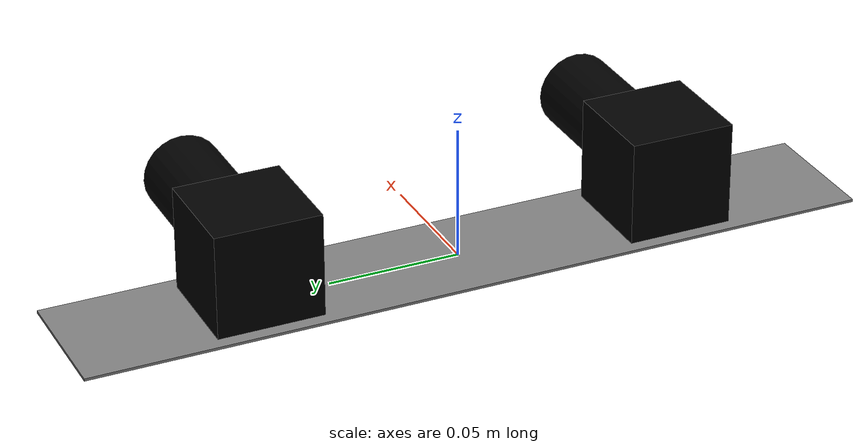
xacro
<?xml version="1.0"?>

<!-- Note that ORDER MATTERS for xmlns! -->
<robot name="stingray"
    xmlns:xi="http://www.w3.org/2001/XInclude"
    xmlns:gazebo="http://playerstage.sourceforge.net/gazebo/xmlschema/#gz"
    xmlns:model="http://playerstage.sourceforge.net/gazebo/xmlschema/#model"
    xmlns:sensor="http://playerstage.sourceforge.net/gazebo/xmlschema/#sensor"
    xmlns:body="http://playerstage.sourceforge.net/gazebo/xmlschema/#body"
    xmlns:geom="http://playerstage.sourceforge.net/gazebo/xmlschema/#geom"
    xmlns:joint="http://playerstage.sourceforge.net/gazebo/xmlschema/#joint"
    xmlns:interface="http://playerstage.sourceforge.net/gazebo/xmlschema/#interface"
    xmlns:rendering="http://playerstage.sourceforge.net/gazebo/xmlschema/#rendering"
    xmlns:renderable="http://playerstage.sourceforge.net/gazebo/xmlschema/#renderable"
    xmlns:controller="http://playerstage.sourceforge.net/gazebo/xmlschema/#controller"
    xmlns:physics="http://playerstage.sourceforge.net/gazebo/xmlschema/#physics"
    xmlns:xacro="http://www.ros.org/wiki/xacro"
>

    <xacro:property name="M_PI"        value="3.1415926535897931"/>
    <xacro:property name="chassis_x"   value="0.05"/>
    <xacro:property name="chassis_y"   value="0.3"/>
    <xacro:property name="chassis_z"   value="0.001"/>
    <xacro:property name="camera_size" value="0.04"/>
    <xacro:property name="lens_length" value="0.05"/>
    <xacro:property name="lens_radius" value="0.015"/>

    <xacro:macro name="default_inertial" params="mass">
        <inertial>
            <mass value="${mass}" />
            <inertia ixx="${mass*0.1}" ixy="0.0" ixz="0.0" iyy="${mass*0.1}" iyz="0.0" izz="${mass*0.1}"/>
        </inertial>
    </xacro:macro>

    <!-- Dummy base_link. Only here to set origin, so make it small. -->
    <link name="base_link">
        <xacro:default_inertial mass="1.0"/>

        <visual>
            <origin xyz="0.0 0.0 0.0" rpy="0.0 0.0 0.0"/>
            <geometry>
                <sphere radius="0.00001"/>
            </geometry>
            <material name="gray">
                <color rgba=".2 .2 .2 1"/>
            </material>
        </visual>
    </link>

    <!-- Camera mounting plate. -->
    <link name="chassis">
        <xacro:default_inertial mass="45.0"/>

        <visual>
            <origin xyz="0.0 0.0 0.0" rpy="0.0 0.0 0.0"/>
            <geometry>
                <box size="${chassis_x} ${chassis_y} ${chassis_z}"/>
            </geometry>
            <material name="grey">
                <color rgba="0.5 0.5 0.5 1"/>
            </material>
        </visual>
    </link>

    <!-- Connect base_link and chassis. -->
    <joint name="base_link_to_chassis" type="fixed">
        <origin xyz="0.0 0.0 0.0" rpy="0.0 0.0 0.0"/>
        <parent link="base_link"/>
        <child link="chassis"/>
    </joint>

   <!-- The left camera in stereo pair. -->
    <link name="left_camera">
        <xacro:default_inertial mass="3.0"/>

        <visual>
            <origin xyz="0.0 0.0 0.0" rpy="0.0 0.0 0.0"/>
            <geometry>
                <box size="${camera_size} ${camera_size} ${camera_size}"/>
            </geometry>
            <material name="black">
                <color rgba="0.0 0.0 0.0 1"/>
            </material>
        </visual>
    </link>

    <!-- Connect chassis and left camera. -->
    <joint name="chassis_to_left_camera" type="fixed">
        <origin xyz="0 ${camera_size*2} ${camera_size*0.5}" rpy="0.0 0.0 0.0"/>
        <parent link="chassis"/>
        <child link="left_camera"/>
    </joint>

   <!-- The right camera in stereo pair. -->

   <link name="right_camera">
        <xacro:default_inertial mass="3.0"/>

        <visual>
            <origin xyz="0.0 0.0 0.0" rpy="0.0 0.0 0.0"/>
            <geometry>
                <box size="${camera_size} ${camera_size} ${camera_size}"/>
            </geometry>
            <material name="black"/>
        </visual>
    </link>

    <!-- Connect chassis and right camera. -->

    <joint name="chassis_to_right_camera" type="fixed">
        <origin xyz="0 ${-camera_size*2} ${camera_size*0.5}" rpy="0.0 0.0 0.0"/>
        <parent link="chassis"/>
        <child link="right_camera"/>
    </joint>

    <!-- The left camera lens. -->
    <link name="left_camera_lens">
        <xacro:default_inertial mass="3.0"/>

        <visual>
            <origin xyz="0.0 0.0 0.0" rpy="0.0 0.0 0.0"/>
            <geometry>
                <cylinder length="${lens_length}" radius="${lens_radius}"/>
            </geometry>
            <material name="black"/>
        </visual>
    </link>

    <!-- Connect left camera and left camera lens. -->
    <joint name="left_camera_to_left_camera_lens" type="fixed">
        <origin xyz="${camera_size} 0.0 0.0" rpy="0.0 ${M_PI/2} 0.0"/>
        <parent link="left_camera"/>
        <child link="left_camera_lens"/>
    </joint>

    <!-- The right camera lens. -->

   <link name="right_camera_lens">
        <xacro:default_inertial mass="3.0"/>

        <visual>
            <origin xyz="0.0 0.0 0.0" rpy="0.0 0.0 0.0"/>
            <geometry>
                <cylinder length="${lens_length}" radius="${lens_radius}"/>
            </geometry>
            <material name="black"/>
        </visual>
    </link>

    <!-- Connect right camera and right camera lens. -->
   <joint name="right_camera_to_right_camera_lens" type="fixed">
        <origin xyz="${camera_size} 0.0 0.0" rpy="0.0 ${M_PI/2} 0.0"/>
        <parent link="right_camera"/>
        <child link="right_camera_lens"/>
    </joint>

    <!-- The left camera optical frame. -->
    <link name="camera_optical_frame">
        <xacro:default_inertial mass=".01"/>

        <visual>
            <origin xyz="0.0 0.0 0.0" rpy="0.0 0.0 0.0"/>
            <geometry>
                <sphere radius=".0001"/>
            </geometry>
            <material name="grey"/>
        </visual>
    </link>

    <!-- Connect left camera lens and camera optical frame. -->

    <joint name="left_camera_lens_to_camera_optical_frame" type="fixed">
        <origin xyz="0 0 0" rpy="0 0 ${-M_PI/2}"/>
        <parent link="left_camera_lens"/>
        <child link="camera_optical_frame"/>
    </joint>
</robot>
